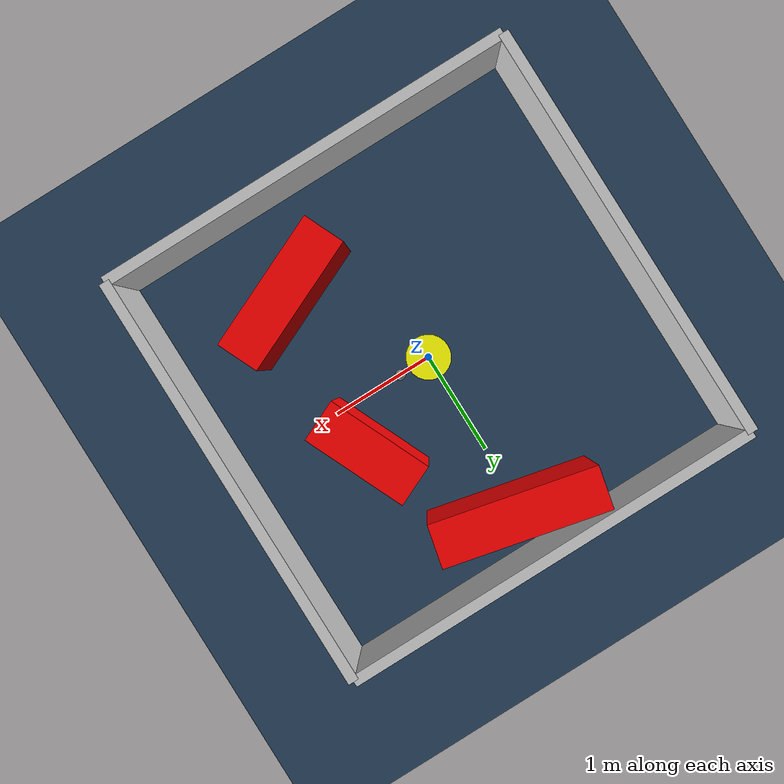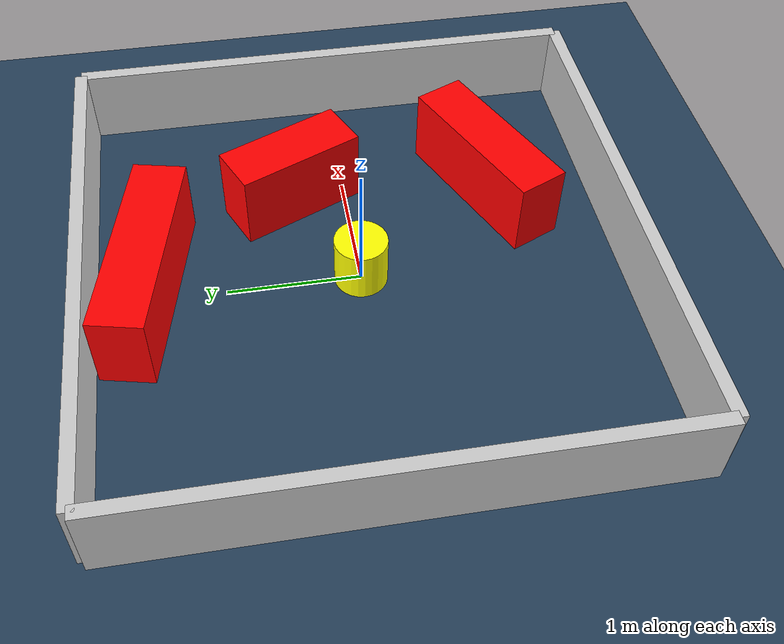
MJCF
<?xml version="1.0" ?>
<mujoco model="generated_environment">
  <option timestep="0.01" integrator="RK4" cone="elliptic"/>
  <default>
    <geom density="1"/>
  </default>
  <asset>
    <texture builtin="gradient" height="3072" rgb1="0.3 0.5 0.7" rgb2="0 0 0" type="skybox" width="512"/>
    <texture builtin="checker" height="300" mark="edge" markrgb="0.8 0.8 0.8" name="groundplane" rgb1="0.2 0.3 0.4" rgb2="0.1 0.2 0.3" type="2d" width="300"/>
    <material name="groundplane" reflectance="0.2" texrepeat="5 5" texture="groundplane" texuniform="true"/>
    <material name="robot" rgba="0.0 1.0 0.0 1"/>
  </asset>
  <worldbody>
    <light dir="0 0 -1" directional="true" pos="0 0 1.5"/>
    <geom condim="4" friction="1.0 0.005 0.001" material="groundplane" name="floor" size="0 0 0.05" type="plane"/>
    <body name="walls">
      <geom name="wall_1" condim="4" pos="-2.0 0.0 0.3" rgba="0.800000011920929 0.800000011920929 0.800000011920929 1.0" size="0.05 2.0 0.3" type="box"/>
      <geom name="wall_2" condim="4" pos="2.0 0.0 0.3" rgba="0.800000011920929 0.800000011920929 0.800000011920929 1.0" size="0.05 2.0 0.3" type="box"/>
      <geom name="wall_3" condim="4" pos="0.0 -2.0 0.3" rgba="0.800000011920929 0.800000011920929 0.800000011920929 1.0" size="2.0 0.05 0.3" type="box"/>
      <geom name="wall_4" condim="4" pos="0.0 2.0 0.3" rgba="0.800000011920929 0.800000011920929 0.800000011920929 1.0" size="2.0 0.05 0.3" type="box"/>
    </body>
    <body name="robot">
      <joint name="joint_x" type="slide" pos="0 0 0" axis="1 0 0"/>
      <joint name="joint_y" type="slide" pos="0 0 0" axis="0 1 0"/>
      <geom name="robot" type="sphere" pos="0.3 0.0 0.2" size="0.05" mass="5." friction="1.0 0.005 0.0001" condim="4" rgba="0.5 0.5 0.5 1.0"/>
      <site name="sensor_ball"/>
    </body>
    <body name="obstacle_movable_1">
      <geom name="obstacle_movable_1" condim="4" pos="0.0 0.0 0.2" euler="0 0 0.0" friction="1.0 0.005 0.001" rgba="1.0 1.0 0.0 1.0" size="0.2 0.2 0.0" type="cylinder" mass="0.1"/>
      <joint type="free"/>
    </body>
    <body name="obstacle_2_static">
      <geom name="obstacle_2_static" condim="4" pos="0.05724332664004339 1.5666373020901576 0.3" euler="0 0 347.2474375263449" friction="1.0 0.005 0.001" rgba="1 0 0 1" size="0.7727705242461449 0.2 0.3" type="box"/>
    </body>
    <body name="obstacle_3_static">
      <geom name="obstacle_3_static" condim="4" pos="0.7768140681261839 -1.128172499264278 0.3" euler="0 0 24.12659796426089" friction="1.0 0.005 0.001" rgba="1 0 0 1" size="0.6618072985605423 0.2 0.3" type="box"/>
    </body>
    <body name="obstacle_4_static">
      <geom name="obstacle_4_static" condim="4" pos="0.8772164150644708 0.41398606115138015 0.3" euler="0 0 294.11199146170924" friction="1.0 0.005 0.001" rgba="1 0 0 1" size="0.4991272007332326 0.2 0.3" type="box"/>
    </body>
  </worldbody>
  <actuator>
    <motor name="actuator_x" joint="joint_x" gear="1" ctrlrange="-1 1"/>
    <motor name="actuator_y" joint="joint_y" gear="1" ctrlrange="-1 1"/>
  </actuator>
</mujoco>
